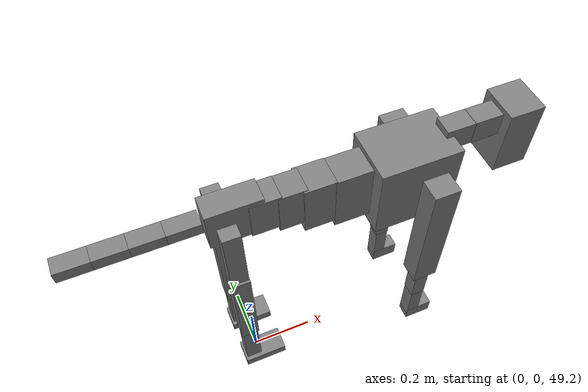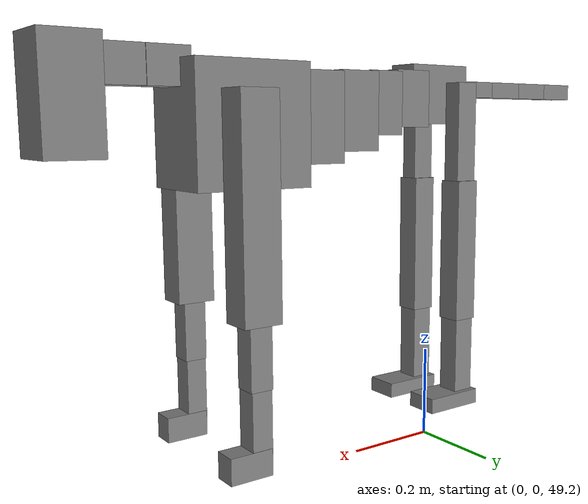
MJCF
<mujoco model="dog">

    <default>
        <joint armature="0.02" stiffness="1" damping="0.2" limited="true"/>
        <geom condim="3" friction="1 0.05 0.05" margin="0.01"/>
        <motor ctrllimited="true" ctrlrange="-1.0 1.0" forcelimited="true" gear="50"/>
    </default>

    <compiler inertiafromgeom="true" angle="radian"/>

    <option timestep="0.016" iterations="50" tolerance="1e-10" solver="Newton" jacobian="dense" cone="pyramidal"/>

    <size nconmax="20000" njmax="60000" nstack="5000000"/>
    <visual>
        <map force="0.1" zfar="30"/>
        <rgba haze="0.15 0.25 0.35 1"/>
        <quality shadowsize="2048"/>
        <global offwidth="800" offheight="800"/>
    </visual>

    <asset>
        <texture type="skybox" builtin="gradient" rgb1="0.3 0.5 0.7" rgb2="0 0 0" width="512" height="512"/>
        <texture name="texplane" type="2d" builtin="checker" rgb1=".2 .3 .4" rgb2=".1 0.15 0.2" width="512" height="512"
                 mark="cross" markrgb=".8 .8 .8"/>
        <texture name="texgeom" type="cube" builtin="flat" mark="cross" width="127" height="1278" rgb1="0.8 0.6 0.4"
                 rgb2="0.8 0.6 0.4" markrgb="1 1 1" random="0.01"/>

        <material name="matplane" reflectance="0.3" texture="texplane" texrepeat="1 1" texuniform="true"/>
        <material name="matgeom" texture="texgeom" texuniform="true" rgba="0.8 0.6 .4 1"/>
    </asset>

    <worldbody>
        <geom name="floor" pos="0 0 0" size="0 0 .25" type="plane" material="matplane" condim="3"/>

        <light directional="false" diffuse=".2 .2 .2" specular="0 0 0" pos="0 0 5" dir="0 0 -1" castshadow="false"/>
        <light mode="targetbodycom" target="torso" directional="false" diffuse=".8 .8 .8" specular="0.3 0.3 0.3"
               pos="0 0 4.0" dir="0 0 -1"/>

        <body name="root" pos="0 0 50">
            <freejoint name="root_1"/>
            <geom type="box" pos="0 0 -0.02" size="0.0774  0.0358  0.063" density="2030"/>

            <body name="spine1" pos="0.054 0 0">
                <joint name="spine1_y" axis="0 1 0" range="0 0.7" limited="true"/>
                <geom type="box" pos="0.02375 0 -0.03" size="0.04375  0.0375  0.05985" density="2030"/>

                <body name="spine2" pos="0.0612 0 0">
                    <joint name="spine2_y" axis="0 1 0" range="-0.15 0.15" limited="true"/>
                    <geom type="box" pos="0.03555  0  -0.04" size="0.04055  0.039  0.06615" density="2030"/>

                    <body name="spine3" pos="0.0730 0 0">
                        <joint name="spine3_y" axis="0 1 0" range="-0.15 0.15" limited="true"/>
                        <geom type="box" pos="0.03555  0  -0.057" size="0.04555  0.0445  0.081" density="2030"/>

                        <body name="spine4" pos="0.0780 0 0">
                            <joint name="spine4_y" axis="0 1 0" range="-0.15 0.15" limited="true"/>
                            <geom type="box" pos="0.05265  0  -0.07" size="0.05265  0.045  0.09135" density="2030"/>

                            <body name="torso" pos="0.1082 0 0">
                                <joint name="torso_y" axis="0 1 0" range="-0.15 0.15" limited="true"/>
                                <geom type="box" pos="0.11925  0  -0.085" size="0.11925  0.085  0.11745"
                                      density="2030"/>

                                <body name="neck1" pos="0.2160  0   0.0180">
                                    <joint name="neck1_y" axis="0 1 0" range="-1.2  -1" limited="true"/>
                                    <geom type="box" pos="0.0423  0  0" size="0.0423  0.03  0.036" density="2325"/>

                                    <body name="neck2" pos="0.0853  0  0">
                                        <joint name="neck2_y" axis="0 1 0" range="0.1  0" limited="true"/>
                                        <geom type="box" pos="0.0423  0  0" size="0.0423  0.03  0.036" density="2325"/>

                                        <body name="head" pos="0.0853  0  0">
                                            <joint name="head_y" axis="0 1 0" range="-0.3  -0.2" limited="true"/>
                                            <geom type="box" pos="0.0531  0  -0.055" size="0.0531  0.06  0.1044"
                                                  density="4030"/>

                                        </body>
                                    </body>
                                </body>

                                <body name="front_shoulder" pos="0.156  0   -0.0480">
                                    <joint name="front_shoulder_y" axis="0 1 0" range="-1 1.5" limited="true"/>
                                    <geom type="box" pos="0 0.13 -0.1816" size="0.0386  0.0330  0.2083" density="1158"/>
                                    <geom type="box" pos="0 -0.13 -0.1816" size="0.0386  0.0330  0.2083"
                                          density="1158"/>

                                    <body name="front_elbow" pos="0  0  -0.3633">
                                        <joint name="front_elbow_y" axis="0 1 0" range="-2 0" limited="true"/>
                                        <geom type="box" pos="0 0.13 -0.0738" size="0.0226  0.0231  0.0738"
                                              density="1081"/>
                                        <geom type="box" pos="0 -0.13 -0.0738" size="0.0226  0.0231  0.0738"
                                              density="1081"/>

                                        <body name="front_wrist" pos="0  0  -0.1476">
                                            <joint name="front_wrist_y" axis="0 1 0" range="-0.2 0" limited="true"/>
                                            <geom type="box" pos="0 0.13 -0.0631" size="0.0207  0.0230  0.0762"
                                                  density="1664"/>
                                            <geom type="box" pos="0 -0.13 -0.0631" size="0.0207  0.0230  0.0762"
                                                  density="1664"/>

                                            <body name="front_finger_end" pos="0  0  -0.1262">
                                                <joint name="front_finger_y" axis="0 1 0" range="-0.4 1"
                                                       limited="true"/>
                                                <geom type="box" pos="0.0237  0.13  -0.0108"
                                                      size="0.0435  0.0237  0.0258" density="1515"/>
                                                <geom type="box" pos="0.0237  -0.13  -0.0108"
                                                      size="0.0435  0.0237  0.0258" density="1515"/>

                                            </body>

                                        </body>
                                    </body>
                                </body>

                            </body>
                        </body>
                    </body>
                </body>
            </body>

            <body name="back_hip" pos="-0.03 0 -0.018">
                <joint name="back_hip_y" axis="0 1 0" range="-1.5 0.3" limited="true"/>
                <geom type="box" pos="0 0.07 -0.1016" size="0.0255  0.0200  0.1244" density="1154"/>
                <geom type="box" pos="0 -0.07 -0.1016" size="0.0255  0.0200  0.1244" density="1154"/>

                <body name="back_knee" pos="0  0  -0.2032">
                    <joint name="back_knee_y" axis="0 1 0" range="0 2.8" limited="true"/>
                    <geom type="box" pos="0 0.07 -0.1387" size="0.0271  0.0267  0.1542" density="1227"/>
                    <geom type="box" pos="0 -0.07 -0.1387" size="0.0271  0.0267  0.1542" density="1227"/>

                    <body name="back_ankle" pos="0  0  -0.2773">
                        <joint name="back_ankle_y" axis="0 1 0" range="-2.2 0" limited="true"/>
                        <geom type="box" pos="0 0.07 -0.0974" size="0.0240  0.0240  0.1086" density="1284"/>
                        <geom type="box" pos="0 -0.07 -0.0974" size="0.0240  0.0240  0.1086" density="1284"/>

                        <body name="back_toe_end" pos="0  0  -0.1947">
                            <joint name="back_toe_y" axis="0 1 0" range="-0.4 1" limited="true"/>
                            <geom type="box" pos="0.0364  0.07  -0.0012" size="0.0667  0.0364  0.0162" density="1515"/>
                            <geom type="box" pos="0.0364  -0.07  -0.0012" size="0.0667  0.0364  0.0162" density="1515"/>

                        </body>
                    </body>
                </body>
            </body>

            <body name="tail1" pos="-0.074 0 -0.006">
                <joint name="tail1_y" axis="0 1 0" range="-0.2 0.2" limited="true"/>
                <geom type="box" pos="-0.0536  0  0" size="0.045  0.025  0.0175" density="1587"/>

                <body name="tail2" pos="-0.09 0 0">
                    <joint name="tail2_y" axis="0 1 0" range="-0.2 0.2" limited="true"/>
                    <geom type="box" pos="-0.0536  0  0" size="0.045  0.025  0.0175" density="1587"/>

                    <body name="tail3" pos="-0.09 0 0">
                        <joint name="tail3_y" axis="0 1 0" range="-0.2 0.2" limited="true"/>
                        <geom type="box" pos="-0.0536  0  0" size="0.045  0.025  0.0175" density="1587"/>

                        <body name="tail4" pos="-0.09 0 0">
                            <joint name="tail4_y" axis="0 1 0" range="-0.2 0.2" limited="true"/>
                            <geom type="box" pos="-0.0536  0  0" size="0.045  0.025  0.0175" density="1587"/>

                        </body>
                    </body>
                </body>
            </body>
        </body>
    </worldbody>

    <actuator>
        <motor joint="spine1_y" forcerange="-150 150     "/>
        <motor joint="spine2_y" forcerange="-150 150     "/>
        <motor joint="spine3_y" forcerange="-150 150     "/>
        <motor joint="spine4_y" forcerange="-150 150     "/>
        <motor joint="torso_y" forcerange="-150 150     "/>
        <motor joint="neck1_y" forcerange="-100 100       "/>
        <motor joint="neck2_y" forcerange="-100 100       "/>
        <motor joint="head_y" forcerange="-150 150       "/>
        <motor joint="front_shoulder_y" forcerange="-145.93 174.14"/>
        <motor joint="front_elbow_y" forcerange="-153.93 114.41"/>
        <motor joint="front_wrist_y" forcerange="-130.33 54.00"/>
        <motor joint="front_finger_y" forcerange="-64.95 21.63"/>
        <motor joint="back_hip_y" forcerange="-231.15 235.51"/>
        <motor joint="back_knee_y" forcerange="-253.46 335.48"/>
        <motor joint="back_angle_y" forcerange="-52.08 232.61"/>
        <motor joint="back_toe_y" forcerange="-77.28 133.81"/>
        <motor joint="tail1_y" forcerange="-50 50     "/>
        <motor joint="tail2_y" forcerange="-50 50     "/>
        <motor joint="tail3_y" forcerange="-50 50     "/>
        <motor joint="tail4_y" forcerange="-50 50     "/>
    </actuator>
</mujoco>
